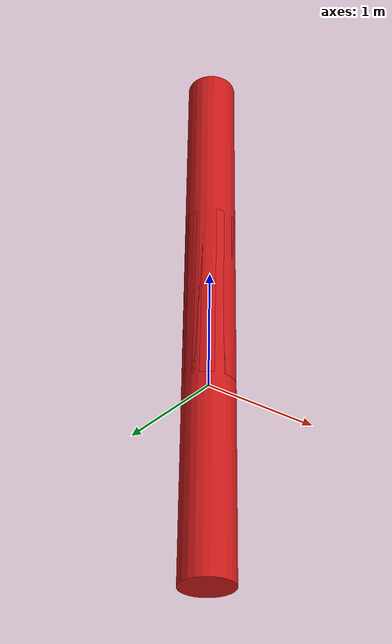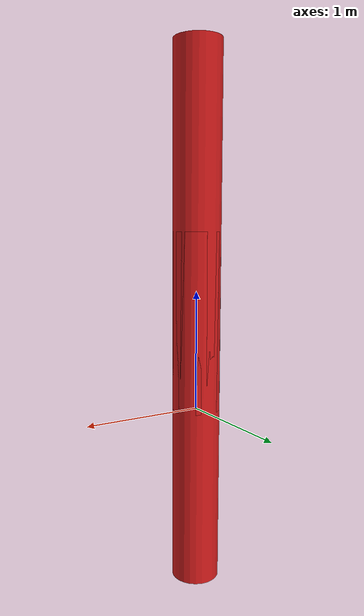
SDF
<?xml version='1.0'?>
<sdf version='1.6'>
  <model name='pole'>
    <link name='link_0'>
      <pose frame=''>0 0 0 0 -0 0</pose>
      <self_collide>0</self_collide>
      <kinematic>0</kinematic>
      <visual name='ModelPreview_0::link_0::visual_1'>
        <pose frame=''>0 0 0 0 -0 0</pose>
        <geometry>
          <cylinder>
            <radius>0.2</radius>
            <length>3</length>
          </cylinder>
        </geometry>
        <material>
          <lighting>1</lighting>
          <script>
            <uri>file://media/materials/scripts/gazebo.material</uri>
            <name>Gazebo/Grey</name>
          </script>
          <ambient>0.8 0.1 0.1 1</ambient>
          <diffuse>0.8 0.1 0.1 1</diffuse>
          <specular>0.01 0.01 0.01 1</specular>
          <emissive>0 0 0 1</emissive>
          <shader type='vertex'>
            <normal_map>__default__</normal_map>
          </shader>
        </material>
        <cast_shadows>1</cast_shadows>
        <transparency>0</transparency>
      </visual>
      <visual name='visual'>
        <pose frame=''>0 0 1.5 0 -0 0</pose>
        <geometry>
          <cylinder>
            <radius>0.2</radius>
            <length>3</length>
          </cylinder>
        </geometry>
        <material>
          <lighting>1</lighting>
          <script>
            <uri>file://media/materials/scripts/gazebo.material</uri>
            <name>Gazebo/Grey</name>
          </script>
          <ambient>0.8 0.1 0.1 1</ambient>
          <diffuse>0.8 0.1 0.1 1</diffuse>
          <specular>0.01 0.01 0.01 1</specular>
          <emissive>0 0 0 1</emissive>
          <shader type='vertex'>
            <normal_map>__default__</normal_map>
          </shader>
        </material>
        <cast_shadows>1</cast_shadows>
        <transparency>0</transparency>
      </visual>
      <collision name='collision'>
        <laser_retro>0</laser_retro>
        <max_contacts>10</max_contacts>
        <pose frame=''>0 0 1.5 0 -0 0</pose>
        <geometry>
          <cylinder>
            <radius>0.2</radius>
            <length>3</length>
          </cylinder>
        </geometry>
      </collision>
      <gravity>0</gravity>
      <static>0</static>
    </link>
  </model>
</sdf>
